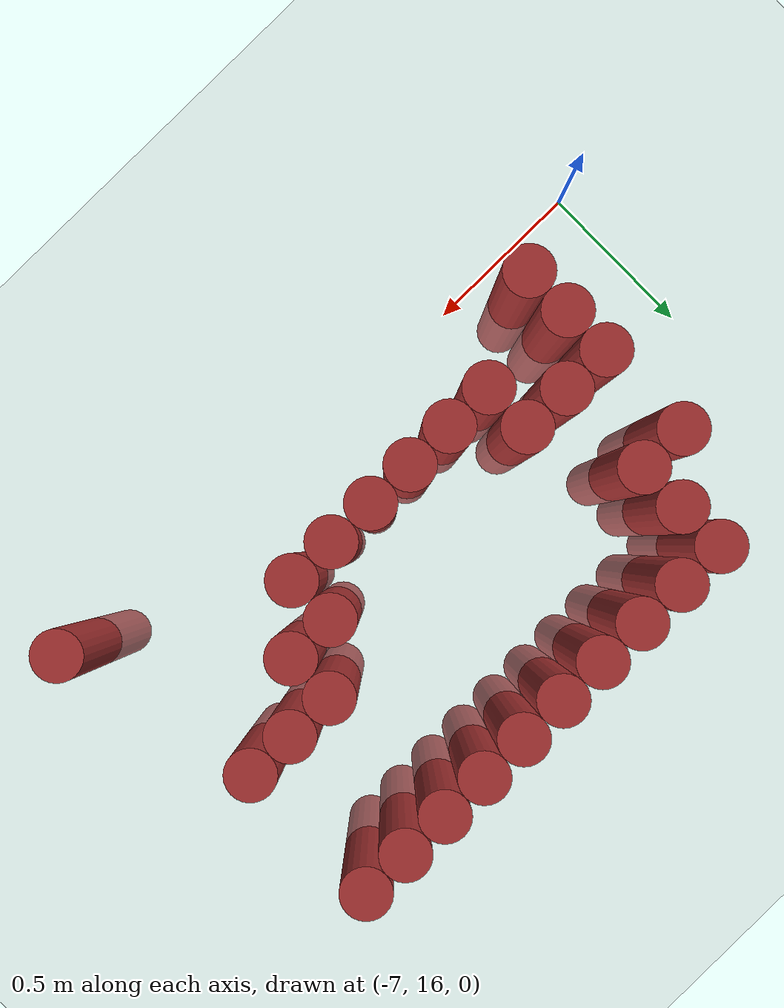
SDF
<sdf version="1.6">
 <world name="default">
  <model name="ground_plane">
   <static>1</static>
   <link name="link">
    <collision name="collision">
     <geometry><plane><normal>0 0 1</normal><size>100 100</size></plane></geometry>
     <surface><friction><ode><mu>100</mu><mu2>50</mu2></ode></friction></surface>
    </collision>
    <visual name="visual">
     <cast_shadows>0</cast_shadows>
     <geometry><plane><normal>0 0 1</normal><size>100 100</size></plane></geometry>
     <material>
      <script><uri>file://media/materials/scripts/gazebo.material</uri><name>Gazebo/Grey</name></script>
     </material>
    </visual>
   </link>
  </model>
  <model name="unit_cylinder_831">
   <static>1</static>
   <pose>-6.675 16.125 0 0 -0 0</pose>
   <link name="link">
    <inertial>
     <mass>1</mass>
     <inertia><ixx>0.145833</ixx><ixy>0</ixy><ixz>0</ixz><iyy>0.145833</iyy><iyz>0</iyz><izz>0.125</izz></inertia>
    </inertial>
    <collision name="collision">
     <geometry><cylinder><radius>0.075</radius><length>1</length></cylinder></geometry>
    </collision>
    <visual name="visual">
     <geometry><cylinder><radius>0.075</radius><length>1</length></cylinder></geometry>
     <material><ambient>0.648 0.192 0.192 1</ambient><diffuse>0.648 0.192 0.192 1</diffuse></material>
     <material>
      <script><name>Gazebo/Grey</name><uri>file://media/materials/scripts/gazebo.material</uri></script>
     </material>
    </visual>
   </link>
  </model>
  <model name="unit_cylinder_832">
   <static>1</static>
   <pose>-6.675 16.275 0 0 -0 0</pose>
   <link name="link">
    <inertial>
     <mass>1</mass>
     <inertia><ixx>0.145833</ixx><ixy>0</ixy><ixz>0</ixz><iyy>0.145833</iyy><iyz>0</iyz><izz>0.125</izz></inertia>
    </inertial>
    <collision name="collision">
     <geometry><cylinder><radius>0.075</radius><length>1</length></cylinder></geometry>
    </collision>
    <visual name="visual">
     <geometry><cylinder><radius>0.075</radius><length>1</length></cylinder></geometry>
     <material><ambient>0.648 0.192 0.192 1</ambient><diffuse>0.648 0.192 0.192 1</diffuse></material>
     <material>
      <script><name>Gazebo/Grey</name><uri>file://media/materials/scripts/gazebo.material</uri></script>
     </material>
    </visual>
   </link>
  </model>
  <model name="unit_cylinder_833">
   <static>1</static>
   <pose>-6.675 16.425 0 0 -0 0</pose>
   <link name="link">
    <inertial>
     <mass>1</mass>
     <inertia><ixx>0.145833</ixx><ixy>0</ixy><ixz>0</ixz><iyy>0.145833</iyy><iyz>0</iyz><izz>0.125</izz></inertia>
    </inertial>
    <collision name="collision">
     <geometry><cylinder><radius>0.075</radius><length>1</length></cylinder></geometry>
    </collision>
    <visual name="visual">
     <geometry><cylinder><radius>0.075</radius><length>1</length></cylinder></geometry>
     <material><ambient>0.648 0.192 0.192 1</ambient><diffuse>0.648 0.192 0.192 1</diffuse></material>
     <material>
      <script><name>Gazebo/Grey</name><uri>file://media/materials/scripts/gazebo.material</uri></script>
     </material>
    </visual>
   </link>
  </model>
  <model name="unit_cylinder_834">
   <static>1</static>
   <pose>-6.675 16.725 0 0 -0 0</pose>
   <link name="link">
    <inertial>
     <mass>1</mass>
     <inertia><ixx>0.145833</ixx><ixy>0</ixy><ixz>0</ixz><iyy>0.145833</iyy><iyz>0</iyz><izz>0.125</izz></inertia>
    </inertial>
    <collision name="collision">
     <geometry><cylinder><radius>0.075</radius><length>1</length></cylinder></geometry>
    </collision>
    <visual name="visual">
     <geometry><cylinder><radius>0.075</radius><length>1</length></cylinder></geometry>
     <material><ambient>0.648 0.192 0.192 1</ambient><diffuse>0.648 0.192 0.192 1</diffuse></material>
     <material>
      <script><name>Gazebo/Grey</name><uri>file://media/materials/scripts/gazebo.material</uri></script>
     </material>
    </visual>
   </link>
  </model>
  <model name="unit_cylinder_854">
   <static>1</static>
   <pose>-6.525 16.425 0 0 -0 0</pose>
   <link name="link">
    <inertial>
     <mass>1</mass>
     <inertia><ixx>0.145833</ixx><ixy>0</ixy><ixz>0</ixz><iyy>0.145833</iyy><iyz>0</iyz><izz>0.125</izz></inertia>
    </inertial>
    <collision name="collision">
     <geometry><cylinder><radius>0.075</radius><length>1</length></cylinder></geometry>
    </collision>
    <visual name="visual">
     <geometry><cylinder><radius>0.075</radius><length>1</length></cylinder></geometry>
     <material><ambient>0.648 0.192 0.192 1</ambient><diffuse>0.648 0.192 0.192 1</diffuse></material>
     <material>
      <script><name>Gazebo/Grey</name><uri>file://media/materials/scripts/gazebo.material</uri></script>
     </material>
    </visual>
   </link>
  </model>
  <model name="unit_cylinder_855">
   <static>1</static>
   <pose>-6.525 16.725 0 0 -0 0</pose>
   <link name="link">
    <inertial>
     <mass>1</mass>
     <inertia><ixx>0.145833</ixx><ixy>0</ixy><ixz>0</ixz><iyy>0.145833</iyy><iyz>0</iyz><izz>0.125</izz></inertia>
    </inertial>
    <collision name="collision">
     <geometry><cylinder><radius>0.075</radius><length>1</length></cylinder></geometry>
    </collision>
    <visual name="visual">
     <geometry><cylinder><radius>0.075</radius><length>1</length></cylinder></geometry>
     <material><ambient>0.648 0.192 0.192 1</ambient><diffuse>0.648 0.192 0.192 1</diffuse></material>
     <material>
      <script><name>Gazebo/Grey</name><uri>file://media/materials/scripts/gazebo.material</uri></script>
     </material>
    </visual>
   </link>
  </model>
  <model name="unit_cylinder_856">
   <static>1</static>
   <pose>-6.525 16.875 0 0 -0 0</pose>
   <link name="link">
    <inertial>
     <mass>1</mass>
     <inertia><ixx>0.145833</ixx><ixy>0</ixy><ixz>0</ixz><iyy>0.145833</iyy><iyz>0</iyz><izz>0.125</izz></inertia>
    </inertial>
    <collision name="collision">
     <geometry><cylinder><radius>0.075</radius><length>1</length></cylinder></geometry>
    </collision>
    <visual name="visual">
     <geometry><cylinder><radius>0.075</radius><length>1</length></cylinder></geometry>
     <material><ambient>0.648 0.192 0.192 1</ambient><diffuse>0.648 0.192 0.192 1</diffuse></material>
     <material>
      <script><name>Gazebo/Grey</name><uri>file://media/materials/scripts/gazebo.material</uri></script>
     </material>
    </visual>
   </link>
  </model>
  <model name="unit_cylinder_857">
   <static>1</static>
   <pose>-6.525 17.025 0 0 -0 0</pose>
   <link name="link">
    <inertial>
     <mass>1</mass>
     <inertia><ixx>0.145833</ixx><ixy>0</ixy><ixz>0</ixz><iyy>0.145833</iyy><iyz>0</iyz><izz>0.125</izz></inertia>
    </inertial>
    <collision name="collision">
     <geometry><cylinder><radius>0.075</radius><length>1</length></cylinder></geometry>
    </collision>
    <visual name="visual">
     <geometry><cylinder><radius>0.075</radius><length>1</length></cylinder></geometry>
     <material><ambient>0.648 0.192 0.192 1</ambient><diffuse>0.648 0.192 0.192 1</diffuse></material>
     <material>
      <script><name>Gazebo/Grey</name><uri>file://media/materials/scripts/gazebo.material</uri></script>
     </material>
    </visual>
   </link>
  </model>
  <model name="unit_cylinder_876">
   <static>1</static>
   <pose>-6.375 16.275 0 0 -0 0</pose>
   <link name="link">
    <inertial>
     <mass>1</mass>
     <inertia><ixx>0.145833</ixx><ixy>0</ixy><ixz>0</ixz><iyy>0.145833</iyy><iyz>0</iyz><izz>0.125</izz></inertia>
    </inertial>
    <collision name="collision">
     <geometry><cylinder><radius>0.075</radius><length>1</length></cylinder></geometry>
    </collision>
    <visual name="visual">
     <geometry><cylinder><radius>0.075</radius><length>1</length></cylinder></geometry>
     <material><ambient>0.648 0.192 0.192 1</ambient><diffuse>0.648 0.192 0.192 1</diffuse></material>
     <material>
      <script><name>Gazebo/Grey</name><uri>file://media/materials/scripts/gazebo.material</uri></script>
     </material>
    </visual>
   </link>
  </model>
  <model name="unit_cylinder_877">
   <static>1</static>
   <pose>-6.375 16.425 0 0 -0 0</pose>
   <link name="link">
    <inertial>
     <mass>1</mass>
     <inertia><ixx>0.145833</ixx><ixy>0</ixy><ixz>0</ixz><iyy>0.145833</iyy><iyz>0</iyz><izz>0.125</izz></inertia>
    </inertial>
    <collision name="collision">
     <geometry><cylinder><radius>0.075</radius><length>1</length></cylinder></geometry>
    </collision>
    <visual name="visual">
     <geometry><cylinder><radius>0.075</radius><length>1</length></cylinder></geometry>
     <material><ambient>0.648 0.192 0.192 1</ambient><diffuse>0.648 0.192 0.192 1</diffuse></material>
     <material>
      <script><name>Gazebo/Grey</name><uri>file://media/materials/scripts/gazebo.material</uri></script>
     </material>
    </visual>
   </link>
  </model>
  <model name="unit_cylinder_878">
   <static>1</static>
   <pose>-6.375 17.025 0 0 -0 0</pose>
   <link name="link">
    <inertial>
     <mass>1</mass>
     <inertia><ixx>0.145833</ixx><ixy>0</ixy><ixz>0</ixz><iyy>0.145833</iyy><iyz>0</iyz><izz>0.125</izz></inertia>
    </inertial>
    <collision name="collision">
     <geometry><cylinder><radius>0.075</radius><length>1</length></cylinder></geometry>
    </collision>
    <visual name="visual">
     <geometry><cylinder><radius>0.075</radius><length>1</length></cylinder></geometry>
     <material><ambient>0.648 0.192 0.192 1</ambient><diffuse>0.648 0.192 0.192 1</diffuse></material>
     <material>
      <script><name>Gazebo/Grey</name><uri>file://media/materials/scripts/gazebo.material</uri></script>
     </material>
    </visual>
   </link>
  </model>
  <model name="unit_cylinder_887">
   <static>1</static>
   <pose>-6.225 16.275 0 0 -0 0</pose>
   <link name="link">
    <inertial>
     <mass>1</mass>
     <inertia><ixx>0.145833</ixx><ixy>0</ixy><ixz>0</ixz><iyy>0.145833</iyy><iyz>0</iyz><izz>0.125</izz></inertia>
    </inertial>
    <collision name="collision">
     <geometry><cylinder><radius>0.075</radius><length>1</length></cylinder></geometry>
    </collision>
    <visual name="visual">
     <geometry><cylinder><radius>0.075</radius><length>1</length></cylinder></geometry>
     <material><ambient>0.648 0.192 0.192 1</ambient><diffuse>0.648 0.192 0.192 1</diffuse></material>
     <material>
      <script><name>Gazebo/Grey</name><uri>file://media/materials/scripts/gazebo.material</uri></script>
     </material>
    </visual>
   </link>
  </model>
  <model name="unit_cylinder_888">
   <static>1</static>
   <pose>-6.225 17.025 0 0 -0 0</pose>
   <link name="link">
    <inertial>
     <mass>1</mass>
     <inertia><ixx>0.145833</ixx><ixy>0</ixy><ixz>0</ixz><iyy>0.145833</iyy><iyz>0</iyz><izz>0.125</izz></inertia>
    </inertial>
    <collision name="collision">
     <geometry><cylinder><radius>0.075</radius><length>1</length></cylinder></geometry>
    </collision>
    <visual name="visual">
     <geometry><cylinder><radius>0.075</radius><length>1</length></cylinder></geometry>
     <material><ambient>0.648 0.192 0.192 1</ambient><diffuse>0.648 0.192 0.192 1</diffuse></material>
     <material>
      <script><name>Gazebo/Grey</name><uri>file://media/materials/scripts/gazebo.material</uri></script>
     </material>
    </visual>
   </link>
  </model>
  <model name="unit_cylinder_907">
   <static>1</static>
   <pose>-6.075 16.275 0 0 -0 0</pose>
   <link name="link">
    <inertial>
     <mass>1</mass>
     <inertia><ixx>0.145833</ixx><ixy>0</ixy><ixz>0</ixz><iyy>0.145833</iyy><iyz>0</iyz><izz>0.125</izz></inertia>
    </inertial>
    <collision name="collision">
     <geometry><cylinder><radius>0.075</radius><length>1</length></cylinder></geometry>
    </collision>
    <visual name="visual">
     <geometry><cylinder><radius>0.075</radius><length>1</length></cylinder></geometry>
     <material><ambient>0.648 0.192 0.192 1</ambient><diffuse>0.648 0.192 0.192 1</diffuse></material>
     <material>
      <script><name>Gazebo/Grey</name><uri>file://media/materials/scripts/gazebo.material</uri></script>
     </material>
    </visual>
   </link>
  </model>
  <model name="unit_cylinder_908">
   <static>1</static>
   <pose>-6.075 17.025 0 0 -0 0</pose>
   <link name="link">
    <inertial>
     <mass>1</mass>
     <inertia><ixx>0.145833</ixx><ixy>0</ixy><ixz>0</ixz><iyy>0.145833</iyy><iyz>0</iyz><izz>0.125</izz></inertia>
    </inertial>
    <collision name="collision">
     <geometry><cylinder><radius>0.075</radius><length>1</length></cylinder></geometry>
    </collision>
    <visual name="visual">
     <geometry><cylinder><radius>0.075</radius><length>1</length></cylinder></geometry>
     <material><ambient>0.648 0.192 0.192 1</ambient><diffuse>0.648 0.192 0.192 1</diffuse></material>
     <material>
      <script><name>Gazebo/Grey</name><uri>file://media/materials/scripts/gazebo.material</uri></script>
     </material>
    </visual>
   </link>
  </model>
  <model name="unit_cylinder_928">
   <static>1</static>
   <pose>-5.925 16.275 0 0 -0 0</pose>
   <link name="link">
    <inertial>
     <mass>1</mass>
     <inertia><ixx>0.145833</ixx><ixy>0</ixy><ixz>0</ixz><iyy>0.145833</iyy><iyz>0</iyz><izz>0.125</izz></inertia>
    </inertial>
    <collision name="collision">
     <geometry><cylinder><radius>0.075</radius><length>1</length></cylinder></geometry>
    </collision>
    <visual name="visual">
     <geometry><cylinder><radius>0.075</radius><length>1</length></cylinder></geometry>
     <material><ambient>0.648 0.192 0.192 1</ambient><diffuse>0.648 0.192 0.192 1</diffuse></material>
     <material>
      <script><name>Gazebo/Grey</name><uri>file://media/materials/scripts/gazebo.material</uri></script>
     </material>
    </visual>
   </link>
  </model>
  <model name="unit_cylinder_929">
   <static>1</static>
   <pose>-5.925 17.025 0 0 -0 0</pose>
   <link name="link">
    <inertial>
     <mass>1</mass>
     <inertia><ixx>0.145833</ixx><ixy>0</ixy><ixz>0</ixz><iyy>0.145833</iyy><iyz>0</iyz><izz>0.125</izz></inertia>
    </inertial>
    <collision name="collision">
     <geometry><cylinder><radius>0.075</radius><length>1</length></cylinder></geometry>
    </collision>
    <visual name="visual">
     <geometry><cylinder><radius>0.075</radius><length>1</length></cylinder></geometry>
     <material><ambient>0.648 0.192 0.192 1</ambient><diffuse>0.648 0.192 0.192 1</diffuse></material>
     <material>
      <script><name>Gazebo/Grey</name><uri>file://media/materials/scripts/gazebo.material</uri></script>
     </material>
    </visual>
   </link>
  </model>
  <model name="unit_cylinder_951">
   <static>1</static>
   <pose>-5.775 16.275 0 0 -0 0</pose>
   <link name="link">
    <inertial>
     <mass>1</mass>
     <inertia><ixx>0.145833</ixx><ixy>0</ixy><ixz>0</ixz><iyy>0.145833</iyy><iyz>0</iyz><izz>0.125</izz></inertia>
    </inertial>
    <collision name="collision">
     <geometry><cylinder><radius>0.075</radius><length>1</length></cylinder></geometry>
    </collision>
    <visual name="visual">
     <geometry><cylinder><radius>0.075</radius><length>1</length></cylinder></geometry>
     <material><ambient>0.648 0.192 0.192 1</ambient><diffuse>0.648 0.192 0.192 1</diffuse></material>
     <material>
      <script><name>Gazebo/Grey</name><uri>file://media/materials/scripts/gazebo.material</uri></script>
     </material>
    </visual>
   </link>
  </model>
  <model name="unit_cylinder_952">
   <static>1</static>
   <pose>-5.775 17.025 0 0 -0 0</pose>
   <link name="link">
    <inertial>
     <mass>1</mass>
     <inertia><ixx>0.145833</ixx><ixy>0</ixy><ixz>0</ixz><iyy>0.145833</iyy><iyz>0</iyz><izz>0.125</izz></inertia>
    </inertial>
    <collision name="collision">
     <geometry><cylinder><radius>0.075</radius><length>1</length></cylinder></geometry>
    </collision>
    <visual name="visual">
     <geometry><cylinder><radius>0.075</radius><length>1</length></cylinder></geometry>
     <material><ambient>0.648 0.192 0.192 1</ambient><diffuse>0.648 0.192 0.192 1</diffuse></material>
     <material>
      <script><name>Gazebo/Grey</name><uri>file://media/materials/scripts/gazebo.material</uri></script>
     </material>
    </visual>
   </link>
  </model>
  <model name="unit_cylinder_960">
   <static>1</static>
   <pose>-5.625 16.275 0 0 -0 0</pose>
   <link name="link">
    <inertial>
     <mass>1</mass>
     <inertia><ixx>0.145833</ixx><ixy>0</ixy><ixz>0</ixz><iyy>0.145833</iyy><iyz>0</iyz><izz>0.125</izz></inertia>
    </inertial>
    <collision name="collision">
     <geometry><cylinder><radius>0.075</radius><length>1</length></cylinder></geometry>
    </collision>
    <visual name="visual">
     <geometry><cylinder><radius>0.075</radius><length>1</length></cylinder></geometry>
     <material><ambient>0.648 0.192 0.192 1</ambient><diffuse>0.648 0.192 0.192 1</diffuse></material>
     <material>
      <script><name>Gazebo/Grey</name><uri>file://media/materials/scripts/gazebo.material</uri></script>
     </material>
    </visual>
   </link>
  </model>
  <model name="unit_cylinder_961">
   <static>1</static>
   <pose>-5.625 16.425 0 0 -0 0</pose>
   <link name="link">
    <inertial>
     <mass>1</mass>
     <inertia><ixx>0.145833</ixx><ixy>0</ixy><ixz>0</ixz><iyy>0.145833</iyy><iyz>0</iyz><izz>0.125</izz></inertia>
    </inertial>
    <collision name="collision">
     <geometry><cylinder><radius>0.075</radius><length>1</length></cylinder></geometry>
    </collision>
    <visual name="visual">
     <geometry><cylinder><radius>0.075</radius><length>1</length></cylinder></geometry>
     <material><ambient>0.648 0.192 0.192 1</ambient><diffuse>0.648 0.192 0.192 1</diffuse></material>
     <material>
      <script><name>Gazebo/Grey</name><uri>file://media/materials/scripts/gazebo.material</uri></script>
     </material>
    </visual>
   </link>
  </model>
  <model name="unit_cylinder_962">
   <static>1</static>
   <pose>-5.625 17.025 0 0 -0 0</pose>
   <link name="link">
    <inertial>
     <mass>1</mass>
     <inertia><ixx>0.145833</ixx><ixy>0</ixy><ixz>0</ixz><iyy>0.145833</iyy><iyz>0</iyz><izz>0.125</izz></inertia>
    </inertial>
    <collision name="collision">
     <geometry><cylinder><radius>0.075</radius><length>1</length></cylinder></geometry>
    </collision>
    <visual name="visual">
     <geometry><cylinder><radius>0.075</radius><length>1</length></cylinder></geometry>
     <material><ambient>0.648 0.192 0.192 1</ambient><diffuse>0.648 0.192 0.192 1</diffuse></material>
     <material>
      <script><name>Gazebo/Grey</name><uri>file://media/materials/scripts/gazebo.material</uri></script>
     </material>
    </visual>
   </link>
  </model>
  <model name="unit_cylinder_969">
   <static>1</static>
   <pose>-5.475 16.425 0 0 -0 0</pose>
   <link name="link">
    <inertial>
     <mass>1</mass>
     <inertia><ixx>0.145833</ixx><ixy>0</ixy><ixz>0</ixz><iyy>0.145833</iyy><iyz>0</iyz><izz>0.125</izz></inertia>
    </inertial>
    <collision name="collision">
     <geometry><cylinder><radius>0.075</radius><length>1</length></cylinder></geometry>
    </collision>
    <visual name="visual">
     <geometry><cylinder><radius>0.075</radius><length>1</length></cylinder></geometry>
     <material><ambient>0.648 0.192 0.192 1</ambient><diffuse>0.648 0.192 0.192 1</diffuse></material>
     <material>
      <script><name>Gazebo/Grey</name><uri>file://media/materials/scripts/gazebo.material</uri></script>
     </material>
    </visual>
   </link>
  </model>
  <model name="unit_cylinder_970">
   <static>1</static>
   <pose>-5.475 16.575 0 0 -0 0</pose>
   <link name="link">
    <inertial>
     <mass>1</mass>
     <inertia><ixx>0.145833</ixx><ixy>0</ixy><ixz>0</ixz><iyy>0.145833</iyy><iyz>0</iyz><izz>0.125</izz></inertia>
    </inertial>
    <collision name="collision">
     <geometry><cylinder><radius>0.075</radius><length>1</length></cylinder></geometry>
    </collision>
    <visual name="visual">
     <geometry><cylinder><radius>0.075</radius><length>1</length></cylinder></geometry>
     <material><ambient>0.648 0.192 0.192 1</ambient><diffuse>0.648 0.192 0.192 1</diffuse></material>
     <material>
      <script><name>Gazebo/Grey</name><uri>file://media/materials/scripts/gazebo.material</uri></script>
     </material>
    </visual>
   </link>
  </model>
  <model name="unit_cylinder_971">
   <static>1</static>
   <pose>-5.475 17.025 0 0 -0 0</pose>
   <link name="link">
    <inertial>
     <mass>1</mass>
     <inertia><ixx>0.145833</ixx><ixy>0</ixy><ixz>0</ixz><iyy>0.145833</iyy><iyz>0</iyz><izz>0.125</izz></inertia>
    </inertial>
    <collision name="collision">
     <geometry><cylinder><radius>0.075</radius><length>1</length></cylinder></geometry>
    </collision>
    <visual name="visual">
     <geometry><cylinder><radius>0.075</radius><length>1</length></cylinder></geometry>
     <material><ambient>0.648 0.192 0.192 1</ambient><diffuse>0.648 0.192 0.192 1</diffuse></material>
     <material>
      <script><name>Gazebo/Grey</name><uri>file://media/materials/scripts/gazebo.material</uri></script>
     </material>
    </visual>
   </link>
  </model>
  <model name="unit_cylinder_989">
   <static>1</static>
   <pose>-5.325 16.575 0 0 -0 0</pose>
   <link name="link">
    <inertial>
     <mass>1</mass>
     <inertia><ixx>0.145833</ixx><ixy>0</ixy><ixz>0</ixz><iyy>0.145833</iyy><iyz>0</iyz><izz>0.125</izz></inertia>
    </inertial>
    <collision name="collision">
     <geometry><cylinder><radius>0.075</radius><length>1</length></cylinder></geometry>
    </collision>
    <visual name="visual">
     <geometry><cylinder><radius>0.075</radius><length>1</length></cylinder></geometry>
     <material><ambient>0.648 0.192 0.192 1</ambient><diffuse>0.648 0.192 0.192 1</diffuse></material>
     <material>
      <script><name>Gazebo/Grey</name><uri>file://media/materials/scripts/gazebo.material</uri></script>
     </material>
    </visual>
   </link>
  </model>
  <model name="unit_cylinder_990">
   <static>1</static>
   <pose>-5.325 17.025 0 0 -0 0</pose>
   <link name="link">
    <inertial>
     <mass>1</mass>
     <inertia><ixx>0.145833</ixx><ixy>0</ixy><ixz>0</ixz><iyy>0.145833</iyy><iyz>0</iyz><izz>0.125</izz></inertia>
    </inertial>
    <collision name="collision">
     <geometry><cylinder><radius>0.075</radius><length>1</length></cylinder></geometry>
    </collision>
    <visual name="visual">
     <geometry><cylinder><radius>0.075</radius><length>1</length></cylinder></geometry>
     <material><ambient>0.648 0.192 0.192 1</ambient><diffuse>0.648 0.192 0.192 1</diffuse></material>
     <material>
      <script><name>Gazebo/Grey</name><uri>file://media/materials/scripts/gazebo.material</uri></script>
     </material>
    </visual>
   </link>
  </model>
  <model name="unit_cylinder_1003">
   <static>1</static>
   <pose>-5.175 16.575 0 0 -0 0</pose>
   <link name="link">
    <inertial>
     <mass>1</mass>
     <inertia><ixx>0.145833</ixx><ixy>0</ixy><ixz>0</ixz><iyy>0.145833</iyy><iyz>0</iyz><izz>0.125</izz></inertia>
    </inertial>
    <collision name="collision">
     <geometry><cylinder><radius>0.075</radius><length>1</length></cylinder></geometry>
    </collision>
    <visual name="visual">
     <geometry><cylinder><radius>0.075</radius><length>1</length></cylinder></geometry>
     <material><ambient>0.648 0.192 0.192 1</ambient><diffuse>0.648 0.192 0.192 1</diffuse></material>
     <material>
      <script><name>Gazebo/Grey</name><uri>file://media/materials/scripts/gazebo.material</uri></script>
     </material>
    </visual>
   </link>
  </model>
  <model name="unit_cylinder_1004">
   <static>1</static>
   <pose>-5.175 17.025 0 0 -0 0</pose>
   <link name="link">
    <inertial>
     <mass>1</mass>
     <inertia><ixx>0.145833</ixx><ixy>0</ixy><ixz>0</ixz><iyy>0.145833</iyy><iyz>0</iyz><izz>0.125</izz></inertia>
    </inertial>
    <collision name="collision">
     <geometry><cylinder><radius>0.075</radius><length>1</length></cylinder></geometry>
    </collision>
    <visual name="visual">
     <geometry><cylinder><radius>0.075</radius><length>1</length></cylinder></geometry>
     <material><ambient>0.648 0.192 0.192 1</ambient><diffuse>0.648 0.192 0.192 1</diffuse></material>
     <material>
      <script><name>Gazebo/Grey</name><uri>file://media/materials/scripts/gazebo.material</uri></script>
     </material>
    </visual>
   </link>
  </model>
  <model name="unit_cylinder_1024">
   <static>1</static>
   <pose>-5.025 15.975 0 0 -0 0</pose>
   <link name="link">
    <inertial>
     <mass>1</mass>
     <inertia><ixx>0.145833</ixx><ixy>0</ixy><ixz>0</ixz><iyy>0.145833</iyy><iyz>0</iyz><izz>0.125</izz></inertia>
    </inertial>
    <collision name="collision">
     <geometry><cylinder><radius>0.075</radius><length>1</length></cylinder></geometry>
    </collision>
    <visual name="visual">
     <geometry><cylinder><radius>0.075</radius><length>1</length></cylinder></geometry>
     <material><ambient>0.648 0.192 0.192 1</ambient><diffuse>0.648 0.192 0.192 1</diffuse></material>
     <material>
      <script><name>Gazebo/Grey</name><uri>file://media/materials/scripts/gazebo.material</uri></script>
     </material>
    </visual>
   </link>
  </model>
 </world>
</sdf>
